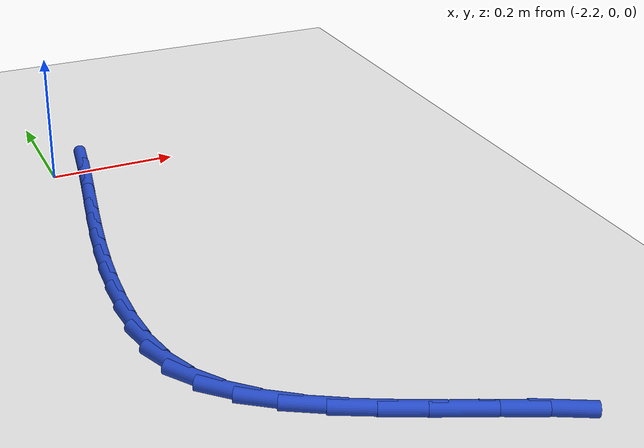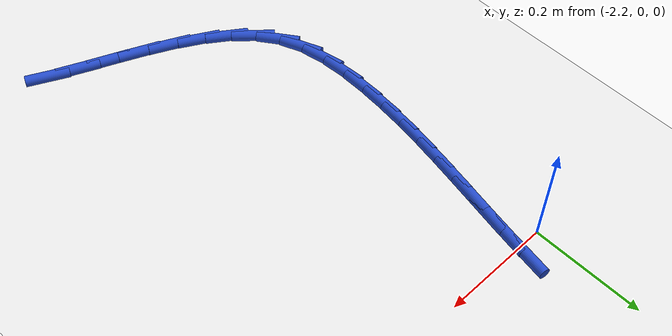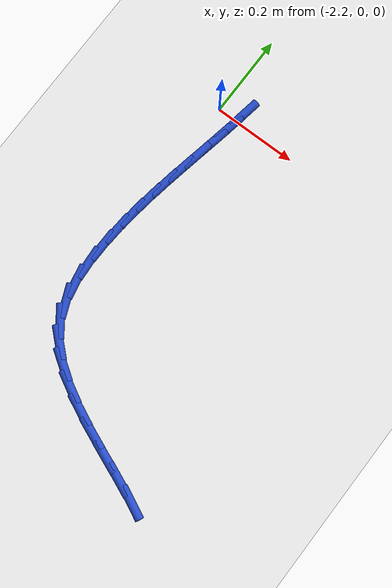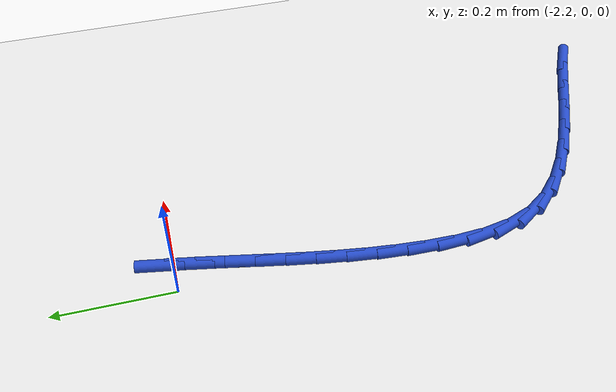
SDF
<sdf version="1.6">
 <world name="default">
  <model name="ground_plane">
   <static>1</static>
   <link name="link">
    <collision name="collision">
     <geometry><plane><normal>0 0 1</normal><size>100 100</size></plane></geometry>
     <surface><friction><ode><mu>100</mu><mu2>50</mu2></ode></friction></surface>
    </collision>
    <visual name="visual">
     <cast_shadows>0</cast_shadows>
     <geometry><plane><normal>0 0 1</normal><size>100 100</size></plane></geometry>
     <material>
      <script><uri>file://media/materials/scripts/gazebo.material</uri><name>Gazebo/WhiteGlow</name></script>
     </material>
    </visual>
   </link>
  </model>
  <model name="line">
   <link name="link_88">
    <pose>-2.147429400253933 0.021554215797119827 0.01 0 1.57 1.4024015469255213</pose>
    <collision name="collision">
     <geometry><cylinder><radius>0.01</radius><length>0.08</length></cylinder></geometry>
    </collision>
    <visual name="visual">
     <material>
      <script><name>Gazebo/Blue</name><uri>file://media/materials/scripts/gazebo.material</uri></script>
     </material>
     <geometry><cylinder><radius>0.01</radius><length>0.08</length></cylinder></geometry>
    </visual>
   </link>
   <link name="link_89">
    <pose>-2.1554404330503725 -0.02556818812700694 0.01 0 1.57 1.3858580002551069</pose>
    <collision name="collision">
     <geometry><cylinder><radius>0.01</radius><length>0.08</length></cylinder></geometry>
    </collision>
    <visual name="visual">
     <material>
      <script><name>Gazebo/Blue</name><uri>file://media/materials/scripts/gazebo.material</uri></script>
     </material>
     <geometry><cylinder><radius>0.01</radius><length>0.08</length></cylinder></geometry>
    </visual>
   </link>
   <link name="link_90">
    <pose>-2.1642708684655485 -0.07277058194168816 0.01 0 1.57 1.3780631359032487</pose>
    <collision name="collision">
     <geometry><cylinder><radius>0.01</radius><length>0.08</length></cylinder></geometry>
    </collision>
    <visual name="visual">
     <material>
      <script><name>Gazebo/Blue</name><uri>file://media/materials/scripts/gazebo.material</uri></script>
     </material>
     <geometry><cylinder><radius>0.01</radius><length>0.08</length></cylinder></geometry>
    </visual>
   </link>
   <link name="link_91">
    <pose>-2.173511719028226 -0.1201217708878668 0.01 0 1.57 1.378894332884143</pose>
    <collision name="collision">
     <geometry><cylinder><radius>0.01</radius><length>0.08</length></cylinder></geometry>
    </collision>
    <visual name="visual">
     <material>
      <script><name>Gazebo/Blue</name><uri>file://media/materials/scripts/gazebo.material</uri></script>
     </material>
     <geometry><cylinder><radius>0.01</radius><length>0.08</length></cylinder></geometry>
    </visual>
   </link>
   <link name="link_92">
    <pose>-2.1827539972671723 -0.16769056020648498 0.01 0 1.57 1.3882382271669589</pose>
    <collision name="collision">
     <geometry><cylinder><radius>0.01</radius><length>0.08</length></cylinder></geometry>
    </collision>
    <visual name="visual">
     <material>
      <script><name>Gazebo/Blue</name><uri>file://media/materials/scripts/gazebo.material</uri></script>
     </material>
     <geometry><cylinder><radius>0.01</radius><length>0.08</length></cylinder></geometry>
    </visual>
   </link>
   <link name="link_93">
    <pose>-2.191588715711154 -0.21554575513848478 0.01 0 1.57 1.4059886696610542</pose>
    <collision name="collision">
     <geometry><cylinder><radius>0.01</radius><length>0.08</length></cylinder></geometry>
    </collision>
    <visual name="visual">
     <material>
      <script><name>Gazebo/Blue</name><uri>file://media/materials/scripts/gazebo.material</uri></script>
     </material>
     <geometry><cylinder><radius>0.01</radius><length>0.08</length></cylinder></geometry>
    </visual>
   </link>
   <link name="link_94">
    <pose>-2.1996068868889376 -0.2637561609248092 0.01 0 1.57 1.432026743987751</pose>
    <collision name="collision">
     <geometry><cylinder><radius>0.01</radius><length>0.08</length></cylinder></geometry>
    </collision>
    <visual name="visual">
     <material>
      <script><name>Gazebo/Blue</name><uri>file://media/materials/scripts/gazebo.material</uri></script>
     </material>
     <geometry><cylinder><radius>0.01</radius><length>0.08</length></cylinder></geometry>
    </visual>
   </link>
   <link name="link_95">
    <pose>-2.2063995233292886 -0.3123905828063984 0.01 0 1.57 1.4661846281297624</pose>
    <collision name="collision">
     <geometry><cylinder><radius>0.01</radius><length>0.08</length></cylinder></geometry>
    </collision>
    <visual name="visual">
     <material>
      <script><name>Gazebo/Blue</name><uri>file://media/materials/scripts/gazebo.material</uri></script>
     </material>
     <geometry><cylinder><radius>0.01</radius><length>0.08</length></cylinder></geometry>
    </visual>
   </link>
   <link name="link_96">
    <pose>-2.211557637560974 -0.3615178260241955 0.01 0 1.57 1.5081960904036027</pose>
    <collision name="collision">
     <geometry><cylinder><radius>0.01</radius><length>0.08</length></cylinder></geometry>
    </collision>
    <visual name="visual">
     <material>
      <script><name>Gazebo/Blue</name><uri>file://media/materials/scripts/gazebo.material</uri></script>
     </material>
     <geometry><cylinder><radius>0.01</radius><length>0.08</length></cylinder></geometry>
    </visual>
   </link>
   <link name="link_97">
    <pose>-2.21467224211276 -0.4112066958191426 0.01 0 1.57 1.55995518831306</pose>
    <collision name="collision">
     <geometry><cylinder><radius>0.01</radius><length>0.08</length></cylinder></geometry>
    </collision>
    <visual name="visual">
     <material>
      <script><name>Gazebo/Blue</name><uri>file://media/materials/scripts/gazebo.material</uri></script>
     </material>
     <geometry><cylinder><radius>0.01</radius><length>0.08</length></cylinder></geometry>
    </visual>
   </link>
   <link name="link_98">
    <pose>-2.2152164239002996 -0.4614007293152093 0.01 0 1.57 -1.4990824895099022</pose>
    <collision name="collision">
     <geometry><cylinder><radius>0.01</radius><length>0.08</length></cylinder></geometry>
    </collision>
    <visual name="visual">
     <material>
      <script><name>Gazebo/Blue</name><uri>file://media/materials/scripts/gazebo.material</uri></script>
     </material>
     <geometry><cylinder><radius>0.01</radius><length>0.08</length></cylinder></geometry>
    </visual>
   </link>
   <link name="link_99">
    <pose>-2.21165531707378 -0.510972751841067 0.01 0 1.57 -1.3681878919831894</pose>
    <collision name="collision">
     <geometry><cylinder><radius>0.01</radius><length>0.08</length></cylinder></geometry>
    </collision>
    <visual name="visual">
     <material>
      <script><name>Gazebo/Blue</name><uri>file://media/materials/scripts/gazebo.material</uri></script>
     </material>
     <geometry><cylinder><radius>0.01</radius><length>0.08</length></cylinder></geometry>
    </visual>
   </link>
   <link name="link_100">
    <pose>-2.201942779980508 -0.5582524789175176 0.01 0 1.57 -1.1786231329613182</pose>
    <collision name="collision">
     <geometry><cylinder><radius>0.01</radius><length>0.08</length></cylinder></geometry>
    </collision>
    <visual name="visual">
     <material>
      <script><name>Gazebo/Blue</name><uri>file://media/materials/scripts/gazebo.material</uri></script>
     </material>
     <geometry><cylinder><radius>0.01</radius><length>0.08</length></cylinder></geometry>
    </visual>
   </link>
   <link name="link_101">
    <pose>-2.1840286703814376 -0.6015653763861077 0.01 0 1.57 -0.9448952439044634</pose>
    <collision name="collision">
     <geometry><cylinder><radius>0.01</radius><length>0.08</length></cylinder></geometry>
    </collision>
    <visual name="visual">
     <material>
      <script><name>Gazebo/Blue</name><uri>file://media/materials/scripts/gazebo.material</uri></script>
     </material>
     <geometry><cylinder><radius>0.01</radius><length>0.08</length></cylinder></geometry>
    </visual>
   </link>
   <link name="link_102">
    <pose>-2.1564937829238207 -0.6396572063404855 0.01 0 1.57 -0.7454336015631579</pose>
    <collision name="collision">
     <geometry><cylinder><radius>0.01</radius><length>0.08</length></cylinder></geometry>
    </collision>
    <visual name="visual">
     <material>
      <script><name>Gazebo/Blue</name><uri>file://media/materials/scripts/gazebo.material</uri></script>
     </material>
     <geometry><cylinder><radius>0.01</radius><length>0.08</length></cylinder></geometry>
    </visual>
   </link>
   <link name="link_103">
    <pose>-2.1204308261702276 -0.6729470329543393 0.01 0 1.57 -0.5998738383271485</pose>
    <collision name="collision">
     <geometry><cylinder><radius>0.01</radius><length>0.08</length></cylinder></geometry>
    </collision>
    <visual name="visual">
     <material>
      <script><name>Gazebo/Blue</name><uri>file://media/materials/scripts/gazebo.material</uri></script>
     </material>
     <geometry><cylinder><radius>0.01</radius><length>0.08</length></cylinder></geometry>
    </visual>
   </link>
   <link name="link_104">
    <pose>-2.077557542613134 -0.7022702844210893 0.01 0 1.57 -0.499811022221086</pose>
    <collision name="collision">
     <geometry><cylinder><radius>0.01</radius><length>0.08</length></cylinder></geometry>
    </collision>
    <visual name="visual">
     <material>
      <script><name>Gazebo/Blue</name><uri>file://media/materials/scripts/gazebo.material</uri></script>
     </material>
     <geometry><cylinder><radius>0.01</radius><length>0.08</length></cylinder></geometry>
    </visual>
   </link>
   <link name="link_105">
    <pose>-2.029591674745016 -0.7284623889341535 0.01 0 1.57 -0.4356252440007062</pose>
    <collision name="collision">
     <geometry><cylinder><radius>0.01</radius><length>0.08</length></cylinder></geometry>
    </collision>
    <visual name="visual">
     <material>
      <script><name>Gazebo/Blue</name><uri>file://media/materials/scripts/gazebo.material</uri></script>
     </material>
     <geometry><cylinder><radius>0.01</radius><length>0.08</length></cylinder></geometry>
    </visual>
   </link>
   <link name="link_106">
    <pose>-1.9782509650583453 -0.7523587746869526 0.01 0 1.57 -0.40046381622891153</pose>
    <collision name="collision">
     <geometry><cylinder><radius>0.01</radius><length>0.08</length></cylinder></geometry>
    </collision>
    <visual name="visual">
     <material>
      <script><name>Gazebo/Blue</name><uri>file://media/materials/scripts/gazebo.material</uri></script>
     </material>
     <geometry><cylinder><radius>0.01</radius><length>0.08</length></cylinder></geometry>
    </visual>
   </link>
   <link name="link_107">
    <pose>-1.9252531560455985 -0.7747948698729055 0.01 0 1.57 -0.3908263051395903</pose>
    <collision name="collision">
     <geometry><cylinder><radius>0.01</radius><length>0.08</length></cylinder></geometry>
    </collision>
    <visual name="visual">
     <material>
      <script><name>Gazebo/Blue</name><uri>file://media/materials/scripts/gazebo.material</uri></script>
     </material>
     <geometry><cylinder><radius>0.01</radius><length>0.08</length></cylinder></geometry>
    </visual>
   </link>
   <link name="link_108">
    <pose>-1.8723159901992508 -0.7966061026854325 0.01 0 1.57 -0.4064860488686914</pose>
    <collision name="collision">
     <geometry><cylinder><radius>0.01</radius><length>0.08</length></cylinder></geometry>
    </collision>
    <visual name="visual">
     <material>
      <script><name>Gazebo/Blue</name><uri>file://media/materials/scripts/gazebo.material</uri></script>
     </material>
     <geometry><cylinder><radius>0.01</radius><length>0.08</length></cylinder></geometry>
    </visual>
   </link>
   <link name="link_109">
    <pose>-1.8211572100117754 -0.818627901317953 0.01 0 1.57 -0.45075004899690807</pose>
    <collision name="collision">
     <geometry><cylinder><radius>0.01</radius><length>0.08</length></cylinder></geometry>
    </collision>
    <visual name="visual">
     <material>
      <script><name>Gazebo/Blue</name><uri>file://media/materials/scripts/gazebo.material</uri></script>
     </material>
     <geometry><cylinder><radius>0.01</radius><length>0.08</length></cylinder></geometry>
    </visual>
   </link>
  </model>
 </world>
</sdf>
